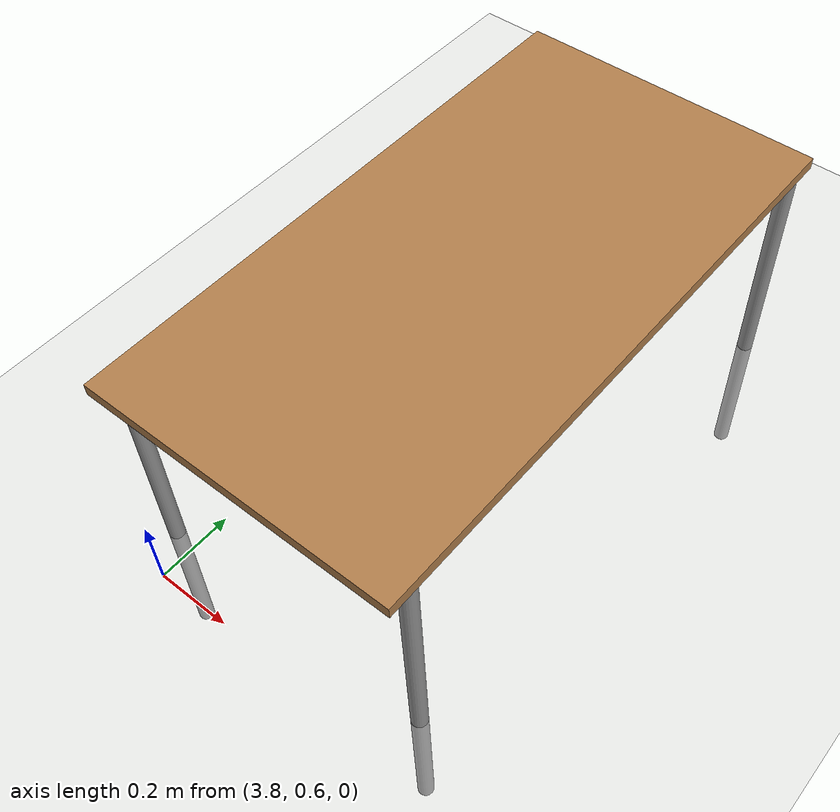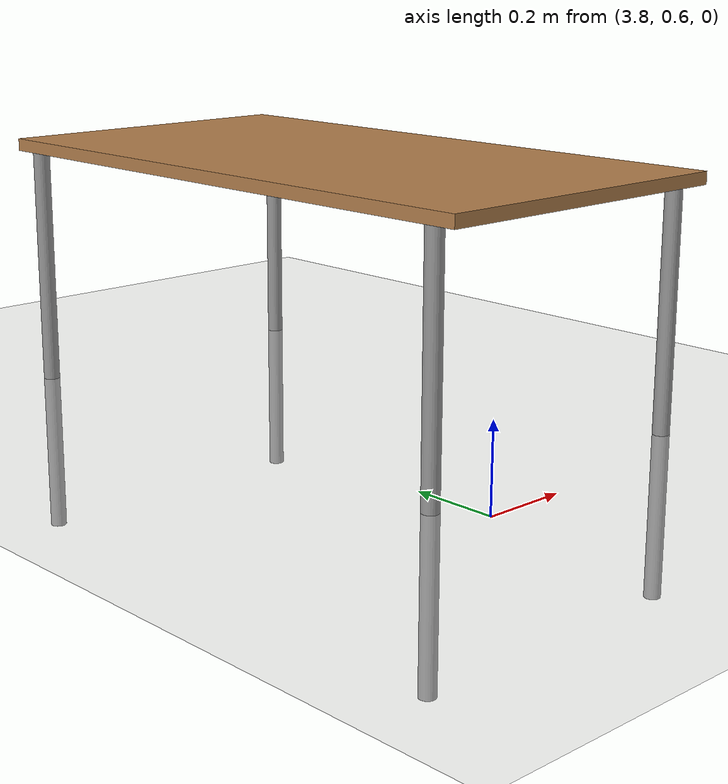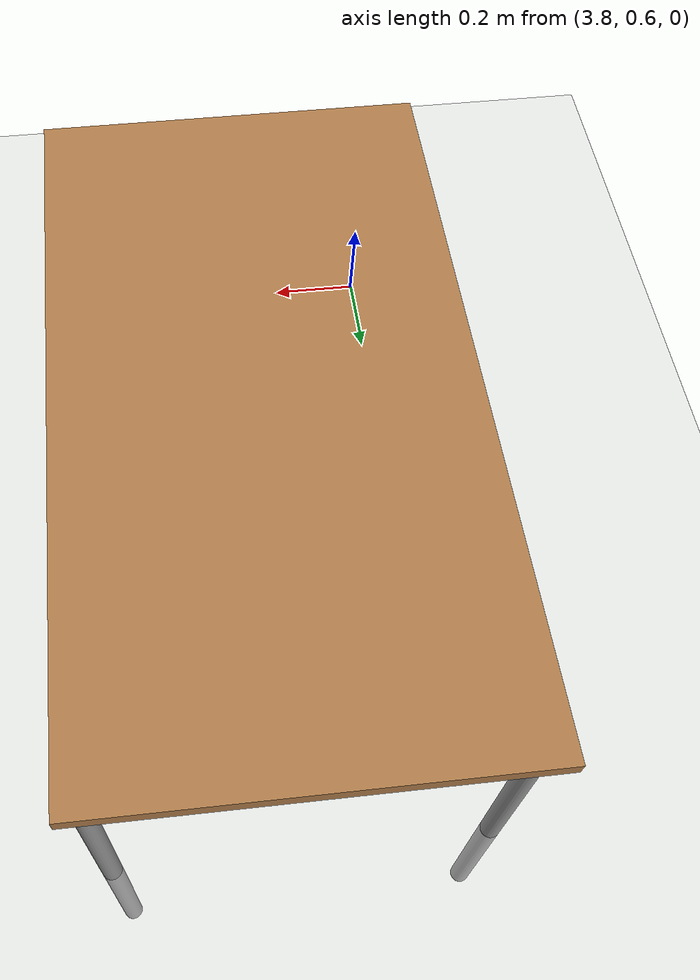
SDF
<sdf version="1.4">
 <world name="default">
  <physics type="ode">
   <max_step_size>0.001</max_step_size>
   <real_time_update_rate>1000</real_time_update_rate>
   <simbody>
    <contact><static_friction>0.98</static_friction><dynamic_friction>0.98</dynamic_friction></contact>
   </simbody>
   <ode>
    <constraints>
     <contact_max_correcting_vel>0.3</contact_max_correcting_vel>
     <contact_surface_layer>0.0005</contact_surface_layer>
    </constraints>
   </ode>
  </physics>
  <include><uri>model://ground_plane</uri></include>
  <include><uri>model://sun</uri></include>
  <include><uri>model://table</uri><pose>4.114 1.383 -0.405 0 0 1.5708</pose></include>
 </world>
</sdf>

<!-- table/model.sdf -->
<sdf version="1.5">
  <model name="table">
    <static>true</static>
    <link name="link">
      <collision name="surface">
        <pose>0 0 1.0 0 0 0</pose>
        <geometry>
          <box>
            <size>1.5 0.8 0.03</size>
          </box>
        </geometry>
        <surface>
          <friction>
            <ode>
              <mu>0.6</mu>
              <mu2>0.6</mu2>
            </ode>
          </friction>
        </surface>
      </collision>
      <visual name="visual1">
        <pose>0 0 1.0 0 0 0</pose>
        <geometry>
          <box>
            <size>1.5 0.8 0.03</size>
          </box>
        </geometry>
        <material>
          <script>
            <uri>model://media/materials/scripts/gazebo.material</uri>
            <name>Gazebo/Wood</name>
          </script>
        </material>
      </visual>
      <collision name="front_left_leg">
        <pose>0.68 0.38 0.5 0 0 0</pose>
        <geometry>
          <cylinder>
            <radius>0.02</radius>
            <length>1.0</length>
          </cylinder>
        </geometry>
      </collision>
      <visual name="front_left_leg">
        <pose>0.68 0.38 0.5 0 0 0</pose>
        <geometry>
          <cylinder>
            <radius>0.02</radius>
            <length>1.0</length>
          </cylinder>
        </geometry>
        <material>
          <script>
            <uri>model://media/materials/scripts/gazebo.material</uri>
            <name>Gazebo/Grey</name>
          </script>
        </material>
      </visual>
      <collision name="front_right_leg">
        <pose>0.68 -0.38 0.5 0 0 0</pose>
        <geometry>
          <cylinder>
            <radius>0.02</radius>
            <length>1.0</length>
          </cylinder>
        </geometry>
      </collision>
      <visual name="front_right_leg">
        <pose>0.68 -0.38 0.5 0 0 0</pose>
        <geometry>
          <cylinder>
            <radius>0.02</radius>
            <length>1.0</length>
          </cylinder>
        </geometry>
        <material>
          <script>
            <uri>model://media/materials/scripts/gazebo.material</uri>
            <name>Gazebo/Grey</name>
          </script>
        </material>
      </visual>
      <collision name="back_right_leg">
        <pose>-0.68 -0.38 0.5 0 0 0</pose>
        <geometry>
          <cylinder>
            <radius>0.02</radius>
            <length>1.0</length>
          </cylinder>
        </geometry>
      </collision>
      <visual name="back_right_leg">
        <pose>-0.68 -0.38 0.5 0 0 0</pose>
        <geometry>
          <cylinder>
            <radius>0.02</radius>
            <length>1.0</length>
          </cylinder>
        </geometry>
        <material>
          <script>
            <uri>model://media/materials/scripts/gazebo.material</uri>
            <name>Gazebo/Grey</name>
          </script>
        </material>
      </visual>
      <collision name="back_left_leg">
        <pose>-0.68 0.38 0.5 0 0 0</pose>
        <geometry>
          <cylinder>
            <radius>0.02</radius>
            <length>1.0</length>
          </cylinder>
        </geometry>
      </collision>
      <visual name="back_left_leg">
        <pose>-0.68 0.38 0.5 0 0 0</pose>
        <geometry>
          <cylinder>
            <radius>0.02</radius>
            <length>1.0</length>
          </cylinder>
        </geometry>
        <material>
          <script>
            <uri>model://media/materials/scripts/gazebo.material</uri>
            <name>Gazebo/Grey</name>
          </script>
        </material>
      </visual>
    </link>
  </model>
</sdf>
